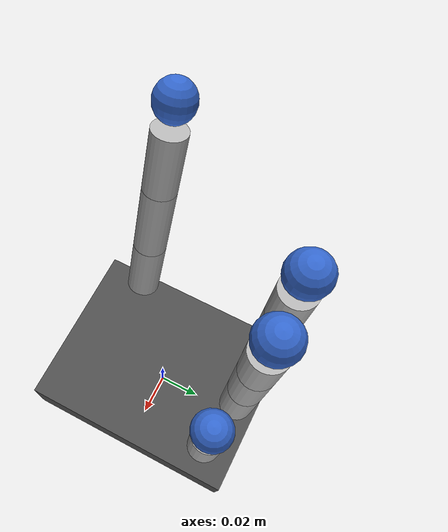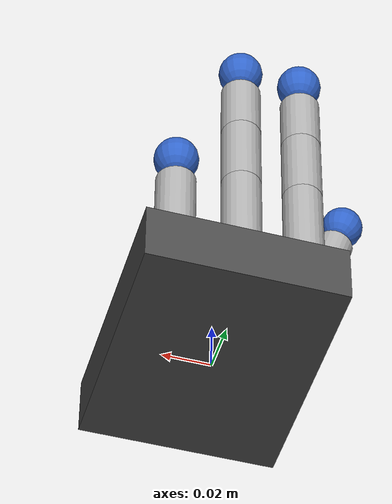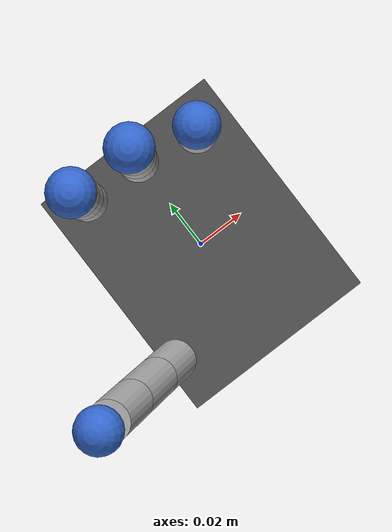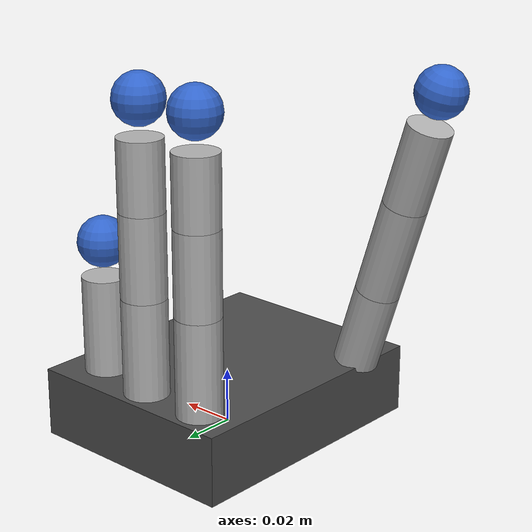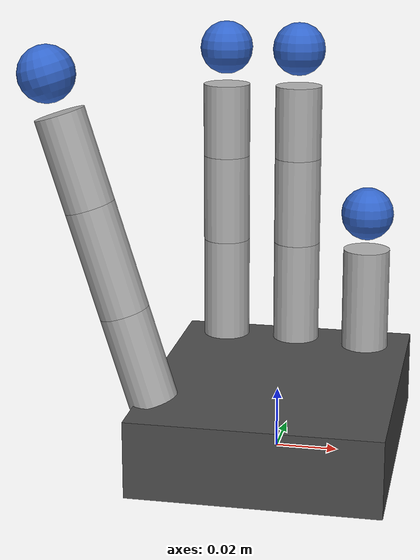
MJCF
<mujoco model="custom_hand">
  <compiler angle="radian"/>

  <default>
    <geom contype="0" conaffinity="0"/>
    <default class="hand">
      <material specular="0.5" shininess="0.25"/>
      <joint axis="0 1 0" range="-6.28319 6.28319" armature="0.1"/>
      <general gaintype="fixed" biastype="affine" ctrlrange="-6.2831 6.2831" gainprm="2000" biasprm="0 -2000 -400"
        forcerange="-150 150"/>
      <default class="size3">
        <default class="size3_limited">
          <joint range="-3.1415 3.1415"/>
          <general ctrlrange="-3.1415 3.1415"/>
        </default>
      </default>
      <default class="size1">
        <general gainprm="500" biasprm="0 -500 -100" forcerange="-5 5"/>
      </default>
      <default class="visual">
        <geom type="mesh" contype="0" conaffinity="0" group="2"/>
      </default>
    </default>
  </default>

  <worldbody>
    <body name="hand_base">
      <inertial mass="0.3" pos="0 0 0.0125" diaginertia="0.0001 0.0001 0.0001"/>
      <geom size="0.04 0.05 0.0125" pos="0 0 0.0125" type="box" rgba="0.3 0.3 0.3 1"/>
      <body name="thumb_cmc_aa_link" pos="-0.035 -0.03 0.025" quat="0.988771 0 -0.149438 0">
        <inertial pos="0 0 0.015" mass="0.02" diaginertia="1e-06 1e-06 1e-07"/>
        <joint name="thumb_cmc_aa" pos="0 0 0" axis="1 0 0" range="-1.5708 1.5708" damping="0.01" frictionloss="0.01"/>
        <geom size="0.008 0.015" pos="0 0 0.015" type="cylinder" rgba="0.7 0.7 0.7 1"/>
        <body name="thumb_cmc_fe_link" pos="0 0 0.03">
          <inertial pos="0 0 0.0175" mass="0.02" diaginertia="1e-06 1e-06 1e-07"/>
          <joint name="thumb_cmc_fe" pos="0 0 0" axis="0 1 0" range="-1.5708 1.5708" damping="0.01" frictionloss="0.01"/>
          <geom size="0.008 0.0175" pos="0 0 0.0175" type="cylinder" rgba="0.7 0.7 0.7 1"/>
          <body name="thumb_mcp_fe_link" pos="0 0 0.035">
            <inertial pos="0 0 0.0241667" mass="0.03" diaginertia="6.14167e-06 6.14167e-06 2e-07"/>
            <joint name="thumb_mcp_fe" pos="0 0 0" axis="1 0 0" range="-1.5708 1.5708" damping="0.01" frictionloss="0.01"/>
            <geom size="0.008 0.015" pos="0 0 0.015" type="cylinder" rgba="0.7 0.7 0.7 1"/>
            <geom size="0.009" pos="0 0 0.0425" rgba="0.2 0.4 0.8 1"/>
          </body>
        </body>
      </body>
      <body name="index_mcp_aa_link" pos="-0.025 0.04 0.025">
        <inertial pos="0 0 0.0175" mass="0.02" diaginertia="1e-06 1e-06 1e-07"/>
        <joint name="index_mcp_aa" pos="0 0 0" axis="1 0 0" range="-1.5708 1.5708" damping="0.01" frictionloss="0.01"/>
        <geom size="0.008 0.0175" pos="0 0 0.0175" type="cylinder" rgba="0.7 0.7 0.7 1"/>
        <body name="index_mcp_fe_link" pos="0 0 0.035">
          <inertial pos="0 0 0.015" mass="0.02" diaginertia="1e-06 1e-06 1e-07"/>
          <joint name="index_mcp_fe" pos="0 0 0" axis="1 0 0" range="-1.5708 1.5708" damping="0.01" frictionloss="0.01"/>
          <geom size="0.008 0.015" pos="0 0 0.015" type="cylinder" rgba="0.7 0.7 0.7 1"/>
          <body name="index_dip_fe_link" pos="0 0 0.03">
            <inertial pos="0 0 0.0208333" mass="0.03" diaginertia="5.26667e-06 5.26667e-06 2e-07"/>
            <joint name="index_dip_fe" pos="0 0 0" axis="1 0 0" range="-1.5708 1.5708" damping="0.01" frictionloss="0.01"/>
            <geom size="0.008 0.0125" pos="0 0 0.0125" type="cylinder" rgba="0.7 0.7 0.7 1"/>
            <geom size="0.009" pos="0 0 0.0375" rgba="0.2 0.4 0.8 1"/>
          </body>
        </body>
      </body>
      <body name="middle_mcp_aa_link" pos="0 0.04 0.025">
        <inertial pos="0 0 0.0175" mass="0.02" diaginertia="1e-06 1e-06 1e-07"/>
        <joint name="middle_mcp_aa" pos="0 0 0" axis="1 0 0" range="-1.5708 1.5708" damping="0.01" frictionloss="0.01"/>
        <geom size="0.008 0.0175" pos="0 0 0.0175" type="cylinder" rgba="0.7 0.7 0.7 1"/>
        <body name="middle_mcp_fe_link" pos="0 0 0.035">
          <inertial pos="0 0 0.015" mass="0.02" diaginertia="1e-06 1e-06 1e-07"/>
          <joint name="middle_mcp_fe" pos="0 0 0" axis="1 0 0" range="-1.5708 1.5708" damping="0.01" frictionloss="0.01"/>
          <geom size="0.008 0.015" pos="0 0 0.015" type="cylinder" rgba="0.7 0.7 0.7 1"/>
          <body name="middle_dip_fe_link" pos="0 0 0.03">
            <inertial pos="0 0 0.0208333" mass="0.03" diaginertia="5.26667e-06 5.26667e-06 2e-07"/>
            <joint name="middle_dip_fe" pos="0 0 0" axis="1 0 0" range="-1.5708 1.5708" damping="0.01" frictionloss="0.01"/>
            <geom size="0.008 0.0125" pos="0 0 0.0125" type="cylinder" rgba="0.7 0.7 0.7 1"/>
            <geom size="0.009" pos="0 0 0.0375" rgba="0.2 0.4 0.8 1"/>
          </body>
        </body>
      </body>
      <body name="ring_mcp_fe_link" pos="0.025 0.035 0.025">
        <inertial pos="0 0 0.0275" mass="0.03" diaginertia="7.1e-06 7.1e-06 2e-07"/>
        <joint name="ring_mcp_fe" pos="0 0 0" axis="1 0 0" range="-1.5708 1.5708" damping="0.01" frictionloss="0.01"/>
        <geom size="0.008 0.0175" pos="0 0 0.0175" type="cylinder" rgba="0.7 0.7 0.7 1"/>
        <geom size="0.009" pos="0 0 0.0475" rgba="0.2 0.4 0.8 1"/>
      </body>
    </body>
  </worldbody>

  <actuator>
    <general class="size1" name="thumb_cmc_aa"   joint="thumb_cmc_aa"/>
    <general class="size1" name="thumb_cmc_fe"   joint="thumb_cmc_fe"/>
    <general class="size1" name="thumb_mcp_fe"   joint="thumb_mcp_fe"/>
    <general class="size1" name="index_mcp_aa"   joint="index_mcp_aa"/>
    <general class="size1" name="index_mcp_fe"   joint="index_mcp_fe"/>
    <general class="size1" name="index_dip_fe"   joint="index_dip_fe"/>
    <general class="size1" name="middle_mcp_aa"  joint="middle_mcp_aa"/>
    <general class="size1" name="middle_mcp_fe"  joint="middle_mcp_fe"/>
    <general class="size1" name="middle_dip_fe"  joint="middle_dip_fe"/>
    <general class="size1" name="ring_mcp_fe"    joint="ring_mcp_fe"/>
  </actuator>

</mujoco>
